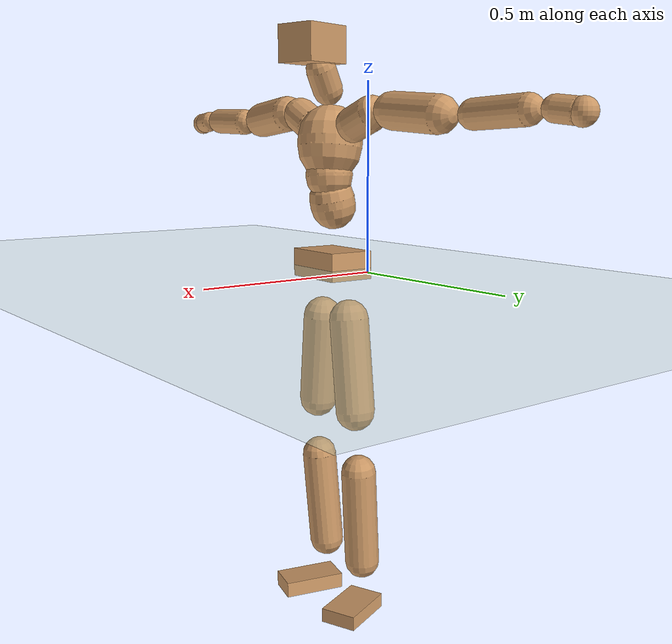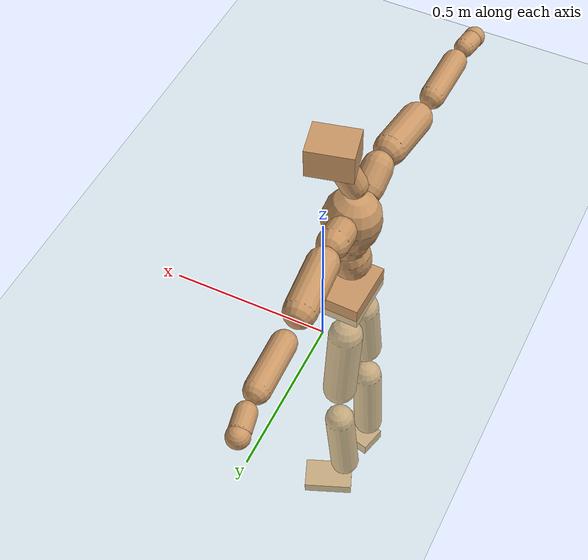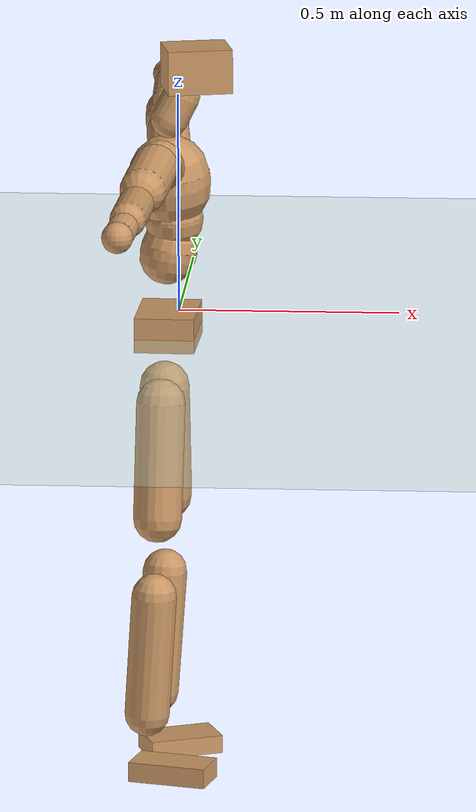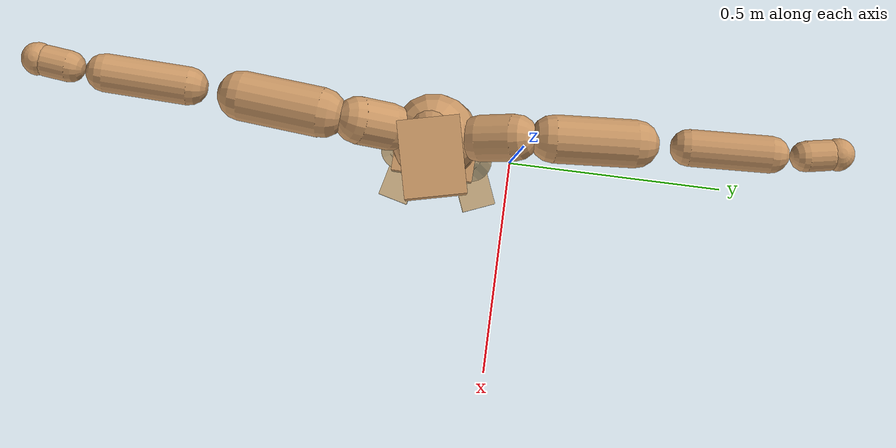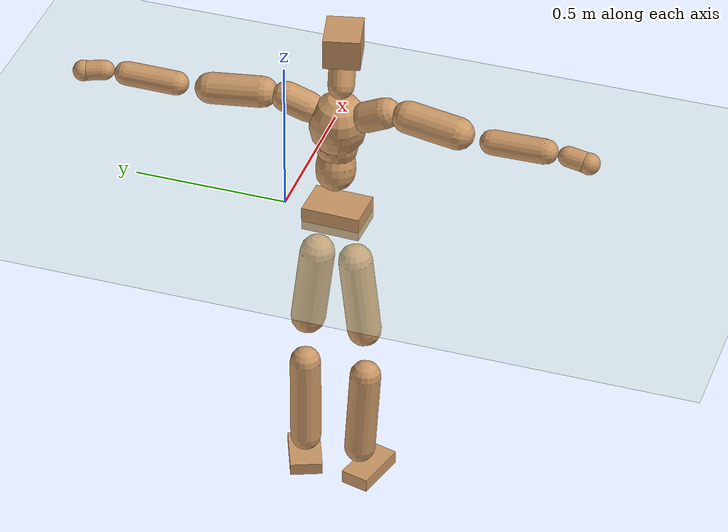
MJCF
<mujoco model="humanoid">
  <compiler coordinate="local" angle="radian"/>
  <default>
    <joint damping="0.0" armature="0.01" stiffness="0.0" limited="true"/>
    <geom conaffinity="1" condim="3" contype="7" margin="0.001" rgba="0.8 0.6 .4 1"/>
  </default>
  <asset>
    <texture type="skybox" builtin="gradient" rgb1=".4 .5 .6" rgb2="0 0 0" width="100" height="100"/>
    <texture builtin="flat" height="1278" mark="cross" markrgb="1 1 1" name="texgeom" random="0.01" rgb1="0.8 0.6 0.4" rgb2="0.8 0.6 0.4" type="cube" width="127"/>
    <texture builtin="checker" height="100" name="texplane" rgb1="0 0 0" rgb2="0.8 0.8 0.8" type="2d" width="100"/>
    <material name="MatPlane" reflectance="0.5" shininess="1" specular="1" texrepeat="60 60" texture="texplane"/>
    <material name="geom" texture="texgeom" texuniform="true"/>
  </asset>
  <worldbody>
    <light cutoff="100" diffuse="1 1 1" dir="-0 0 -1.3" directional="true" exponent="1" pos="0 0 1.3" specular=".1 .1 .1"/>
    <geom conaffinity="1" condim="3" name="floor" pos="0 0 0" rgba="0.8 0.9 0.8 1" size="100 100 .2" type="plane" material="MatPlane"/>
    <body name="Pelvis" pos="-0.0004 -0.1772 0.0151">
      <freejoint name="Pelvis"/>
      <geom type="box" contype="1" conaffinity="1" density="500" pos="-0.0117 0.0004 -0.0084" size="0.0673 0.0951 0.0395" quat="0.9999 0.0000 0.0000 -0.0155" name="Pelvis"/>
      <body name="L_Hip" pos="-0.0256 0.0511 -0.0754">
        <joint name="L_Hip_x" type="hinge" pos="0 0 0" axis="1 0 0" stiffness="800" damping="80" armature="0.02" range="-180.0000 180.0000"/>
        <joint name="L_Hip_y" type="hinge" pos="0 0 0" axis="0 1 0" stiffness="800" damping="80" armature="0.02" range="-180.0000 180.0000"/>
        <joint name="L_Hip_z" type="hinge" pos="0 0 0" axis="0 0 1" stiffness="800" damping="80" armature="0.02" range="-180.0000 180.0000"/>
        <geom type="capsule" contype="1" conaffinity="1" density="500" fromto="0.0008 0.0109 -0.0882 0.0031 0.0436 -0.3529" size="0.0563" name="L_Hip"/>
        <body name="L_Knee" pos="0.0039 0.0545 -0.4411">
          <joint name="L_Knee_x" type="hinge" pos="0 0 0" axis="1 0 0" stiffness="800" damping="80" armature="0.02" range="-180.0000 180.0000"/>
          <joint name="L_Knee_y" type="hinge" pos="0 0 0" axis="0 1 0" stiffness="800" damping="80" armature="0.02" range="-180.0000 180.0000"/>
          <joint name="L_Knee_z" type="hinge" pos="0 0 0" axis="0 0 1" stiffness="800" damping="80" armature="0.02" range="-180.0000 180.0000"/>
          <geom type="capsule" contype="1" conaffinity="1" density="500" fromto="-0.0068 -0.0025 -0.0951 -0.0272 -0.0101 -0.3803" size="0.0505" name="L_Knee"/>
          <body name="L_Ankle" pos="-0.034 -0.0126 -0.4754">
            <joint name="L_Ankle_x" type="hinge" pos="0 0 0" axis="1 0 0" stiffness="800" damping="80" armature="0.02" range="-180.0000 180.0000"/>
            <joint name="L_Ankle_y" type="hinge" pos="0 0 0" axis="0 1 0" stiffness="800" damping="80" armature="0.02" range="-180.0000 180.0000"/>
            <joint name="L_Ankle_z" type="hinge" pos="0 0 0" axis="0 0 1" stiffness="800" damping="80" armature="0.02" range="-180.0000 180.0000"/>
            <geom type="box" contype="1" conaffinity="1" density="500" pos="0.0603 0.0243 -0.0317" size="0.0845 0.053 0.0206" quat="0.9818 0.0000 0.0000 0.1901" name="L_Ankle"/>
            <body name="L_Toe" pos="0.1207 0.0486 -0.0634">
              <joint name="L_Toe_x" type="hinge" pos="0 0 0" axis="1 0 0" stiffness="500" damping="50" armature="0.02" range="-180.0000 180.0000"/>
              <joint name="L_Toe_y" type="hinge" pos="0 0 0" axis="0 1 0" stiffness="500" damping="50" armature="0.02" range="-180.0000 180.0000"/>
              <joint name="L_Toe_z" type="hinge" pos="0 0 0" axis="0 0 1" stiffness="500" damping="50" armature="0.02" range="-180.0000 180.0000"/>
              <geom type="box" contype="1" conaffinity="1" density="500" pos="0.0000 0.0000 0.0331" size="0.001 0.0025 0.0011" quat="0.9810 0.0000 0.0000 0.1942" name="L_Toe"/>
            </body>
          </body>
        </body>
      </body>
      <body name="R_Hip" pos="-0.0224 -0.054 -0.0838">
        <joint name="R_Hip_x" type="hinge" pos="0 0 0" axis="1 0 0" stiffness="800" damping="80" armature="0.02" range="-180.0000 180.0000"/>
        <joint name="R_Hip_y" type="hinge" pos="0 0 0" axis="0 1 0" stiffness="800" damping="80" armature="0.02" range="-180.0000 180.0000"/>
        <joint name="R_Hip_z" type="hinge" pos="0 0 0" axis="0 0 1" stiffness="800" damping="80" armature="0.02" range="-180.0000 180.0000"/>
        <geom type="capsule" contype="1" conaffinity="1" density="500" fromto="-0.0019 -0.0108 -0.0867 -0.0077 -0.0432 -0.3469" size="0.0552" name="R_Hip"/>
        <body name="R_Knee" pos="-0.0097 -0.0541 -0.4337">
          <joint name="R_Knee_x" type="hinge" pos="0 0 0" axis="1 0 0" stiffness="800" damping="80" armature="0.02" range="-180.0000 180.0000"/>
          <joint name="R_Knee_y" type="hinge" pos="0 0 0" axis="0 1 0" stiffness="800" damping="80" armature="0.02" range="-180.0000 180.0000"/>
          <joint name="R_Knee_z" type="hinge" pos="0 0 0" axis="0 0 1" stiffness="800" damping="80" armature="0.02" range="-180.0000 180.0000"/>
          <geom type="capsule" contype="1" conaffinity="1" density="500" fromto="-0.0060 0.0038 -0.0938 -0.0242 0.0153 -0.3751" size="0.051" name="R_Knee"/>
          <body name="R_Ankle" pos="-0.0302 0.0191 -0.4688">
            <joint name="R_Ankle_x" type="hinge" pos="0 0 0" axis="1 0 0" stiffness="800" damping="80" armature="0.02" range="-180.0000 180.0000"/>
            <joint name="R_Ankle_y" type="hinge" pos="0 0 0" axis="0 1 0" stiffness="800" damping="80" armature="0.02" range="-180.0000 180.0000"/>
            <joint name="R_Ankle_z" type="hinge" pos="0 0 0" axis="0 0 1" stiffness="800" damping="80" armature="0.02" range="-180.0000 180.0000"/>
            <geom type="box" contype="1" conaffinity="1" density="500" pos="0.0642 -0.0166 -0.0349" size="0.0899 0.0474 0.0228" quat="0.9920 0.0000 0.0000 -0.1261" name="R_Ankle"/>
            <body name="R_Toe" pos="0.1284 -0.0332 -0.0699">
              <joint name="R_Toe_x" type="hinge" pos="0 0 0" axis="1 0 0" stiffness="500" damping="50" armature="0.02" range="-180.0000 180.0000"/>
              <joint name="R_Toe_y" type="hinge" pos="0 0 0" axis="0 1 0" stiffness="500" damping="50" armature="0.02" range="-180.0000 180.0000"/>
              <joint name="R_Toe_z" type="hinge" pos="0 0 0" axis="0 0 1" stiffness="500" damping="50" armature="0.02" range="-180.0000 180.0000"/>
              <geom type="box" contype="1" conaffinity="1" density="500" pos="0.0000 0.0000 0.0350" size="0.001 0.0023 0.0011" quat="0.9931 0.0000 0.0000 -0.1170" name="R_Toe"/>
            </body>
          </body>
        </body>
      </body>
      <body name="Torso" pos="-0.0224 0.0051 0.1086">
        <joint name="Torso_x" type="hinge" pos="0 0 0" axis="1 0 0" stiffness="1000" damping="100" armature="0.02" range="-180.0000 180.0000"/>
        <joint name="Torso_y" type="hinge" pos="0 0 0" axis="0 1 0" stiffness="1000" damping="100" armature="0.02" range="-180.0000 180.0000"/>
        <joint name="Torso_z" type="hinge" pos="0 0 0" axis="0 0 1" stiffness="1000" damping="100" armature="0.02" range="-180.0000 180.0000"/>
        <geom type="capsule" contype="1" conaffinity="1" density="500" fromto="0.0148 0.0008 0.0660 0.0099 0.0005 0.0440" size="0.0637" name="Torso"/>
        <body name="Spine" pos="0.0247 0.0014 0.11">
          <joint name="Spine_x" type="hinge" pos="0 0 0" axis="1 0 0" stiffness="1000" damping="100" armature="0.02" range="-180.0000 180.0000"/>
          <joint name="Spine_y" type="hinge" pos="0 0 0" axis="0 1 0" stiffness="1000" damping="100" armature="0.02" range="-180.0000 180.0000"/>
          <joint name="Spine_z" type="hinge" pos="0 0 0" axis="0 0 1" stiffness="1000" damping="100" armature="0.02" range="-180.0000 180.0000"/>
          <geom type="capsule" contype="1" conaffinity="1" density="500" fromto="-0.0007 -0.0015 0.0261 -0.0005 -0.0010 0.0174" size="0.066" name="Spine"/>
          <body name="Chest" pos="-0.0012 -0.0025 0.0435">
            <joint name="Chest_x" type="hinge" pos="0 0 0" axis="1 0 0" stiffness="1000" damping="100" armature="0.02" range="-180.0000 180.0000"/>
            <joint name="Chest_y" type="hinge" pos="0 0 0" axis="0 1 0" stiffness="1000" damping="100" armature="0.02" range="-180.0000 180.0000"/>
            <joint name="Chest_z" type="hinge" pos="0 0 0" axis="0 0 1" stiffness="1000" damping="100" armature="0.02" range="-180.0000 180.0000"/>
            <geom type="capsule" contype="1" conaffinity="1" density="500" fromto="-0.0089 -0.0054 0.0798 -0.0060 -0.0036 0.0532" size="0.0909" name="Chest"/>
            <body name="Neck" pos="-0.0171 -0.0159 0.1903">
              <joint name="Neck_x" type="hinge" pos="0 0 0" axis="1 0 0" stiffness="500" damping="50" armature="0.02" range="-180.0000 180.0000"/>
              <joint name="Neck_y" type="hinge" pos="0 0 0" axis="0 1 0" stiffness="500" damping="50" armature="0.02" range="-180.0000 180.0000"/>
              <joint name="Neck_z" type="hinge" pos="0 0 0" axis="0 0 1" stiffness="500" damping="50" armature="0.02" range="-180.0000 180.0000"/>
              <geom type="capsule" contype="1" conaffinity="1" density="500" fromto="0.0091 0.0018 0.0177 0.0364 0.0072 0.0709" size="0.0417" name="Neck"/>
              <body name="Head" pos="0.0455 0.009 0.0886">
                <joint name="Head_x" type="hinge" pos="0 0 0" axis="1 0 0" stiffness="500" damping="50" armature="0.02" range="-180.0000 180.0000"/>
                <joint name="Head_y" type="hinge" pos="0 0 0" axis="0 1 0" stiffness="500" damping="50" armature="0.02" range="-180.0000 180.0000"/>
                <joint name="Head_z" type="hinge" pos="0 0 0" axis="0 0 1" stiffness="500" damping="50" armature="0.02" range="-180.0000 180.0000"/>
                <geom type="box" contype="1" conaffinity="1" density="500" pos="0.0238 0.0055 0.0453" size="0.0724 0.0582 0.0497" quat="0.9935 0.0000 0.0000 0.1135" name="Head"/>
              </body>
            </body>
            <body name="L_Thorax" pos="-0.0124 0.0671 0.1039">
              <joint name="L_Thorax_x" type="hinge" pos="0 0 0" axis="1 0 0" stiffness="500" damping="50" armature="0.02" range="-180.0000 180.0000"/>
              <joint name="L_Thorax_y" type="hinge" pos="0 0 0" axis="0 1 0" stiffness="500" damping="50" armature="0.02" range="-180.0000 180.0000"/>
              <joint name="L_Thorax_z" type="hinge" pos="0 0 0" axis="0 0 1" stiffness="500" damping="50" armature="0.02" range="-180.0000 180.0000"/>
              <geom type="capsule" contype="1" conaffinity="1" density="500" fromto="-0.0027 0.0226 0.0094 -0.0106 0.0905 0.0374" size="0.0483" name="L_Thorax"/>
              <body name="L_Shoulder" pos="-0.0133 0.1131 0.0468">
                <joint name="L_Shoulder_x" type="hinge" pos="0 0 0" axis="1 0 0" stiffness="500" damping="50" armature="0.02" range="-720.0000 720.0000"/>
                <joint name="L_Shoulder_y" type="hinge" pos="0 0 0" axis="0 1 0" stiffness="500" damping="50" armature="0.02" range="-720.0000 720.0000"/>
                <joint name="L_Shoulder_z" type="hinge" pos="0 0 0" axis="0 0 1" stiffness="500" damping="50" armature="0.02" range="-720.0000 720.0000"/>
                <geom type="capsule" contype="1" conaffinity="1" density="500" fromto="-0.0039 0.0550 -0.0043 -0.0156 0.2200 -0.0174" size="0.0496" name="L_Shoulder"/>
                <body name="L_Elbow" pos="-0.0195 0.2751 -0.0217">
                  <joint name="L_Elbow_x" type="hinge" pos="0 0 0" axis="1 0 0" stiffness="500" damping="50" armature="0.02" range="-720.0000 720.0000"/>
                  <joint name="L_Elbow_y" type="hinge" pos="0 0 0" axis="0 1 0" stiffness="500" damping="50" armature="0.02" range="-720.0000 720.0000"/>
                  <joint name="L_Elbow_z" type="hinge" pos="0 0 0" axis="0 0 1" stiffness="500" damping="50" armature="0.02" range="-720.0000 720.0000"/>
                  <geom type="capsule" contype="1" conaffinity="1" density="500" fromto="-0.0021 0.0547 0.0021 -0.0084 0.2189 0.0084" size="0.0381" name="L_Elbow"/>
                  <body name="L_Wrist" pos="-0.0105 0.2737 0.0105">
                    <joint name="L_Wrist_x" type="hinge" pos="0 0 0" axis="1 0 0" stiffness="300" damping="30" armature="0.02" range="-180.0000 180.0000"/>
                    <joint name="L_Wrist_y" type="hinge" pos="0 0 0" axis="0 1 0" stiffness="300" damping="30" armature="0.02" range="-180.0000 180.0000"/>
                    <joint name="L_Wrist_z" type="hinge" pos="0 0 0" axis="0 0 1" stiffness="300" damping="30" armature="0.02" range="-180.0000 180.0000"/>
                    <geom type="capsule" contype="1" conaffinity="1" density="500" fromto="-0.0031 0.0166 -0.0020 -0.0124 0.0663 -0.0079" size="0.0317" name="L_Wrist"/>
                    <body name="L_Hand" pos="-0.0155 0.0829 -0.0099">
                      <joint name="L_Hand_x" type="hinge" pos="0 0 0" axis="1 0 0" stiffness="300" damping="30" armature="0.02" range="-180.0000 180.0000"/>
                      <joint name="L_Hand_y" type="hinge" pos="0 0 0" axis="0 1 0" stiffness="300" damping="30" armature="0.02" range="-180.0000 180.0000"/>
                      <joint name="L_Hand_z" type="hinge" pos="0 0 0" axis="0 0 1" stiffness="300" damping="30" armature="0.02" range="-180.0000 180.0000"/>
                      <geom type="sphere" contype="1" conaffinity="1" density="500" size="0.0337" pos="0.0000 0.0000 0.0000" name="L_Hand"/>
                    </body>
                  </body>
                </body>
              </body>
            </body>
            <body name="R_Thorax" pos="-0.0153 -0.0781 0.1048">
              <joint name="R_Thorax_x" type="hinge" pos="0 0 0" axis="1 0 0" stiffness="500" damping="50" armature="0.02" range="-180.0000 180.0000"/>
              <joint name="R_Thorax_y" type="hinge" pos="0 0 0" axis="0 1 0" stiffness="500" damping="50" armature="0.02" range="-180.0000 180.0000"/>
              <joint name="R_Thorax_z" type="hinge" pos="0 0 0" axis="0 0 1" stiffness="500" damping="50" armature="0.02" range="-180.0000 180.0000"/>
              <geom type="capsule" contype="1" conaffinity="1" density="500" fromto="-0.0007 -0.0206 0.0101 -0.0027 -0.0823 0.0403" size="0.0489" name="R_Thorax"/>
              <body name="R_Shoulder" pos="-0.0034 -0.1029 0.0503">
                <joint name="R_Shoulder_x" type="hinge" pos="0 0 0" axis="1 0 0" stiffness="500" damping="50" armature="0.02" range="-720.0000 720.0000"/>
                <joint name="R_Shoulder_y" type="hinge" pos="0 0 0" axis="0 1 0" stiffness="500" damping="50" armature="0.02" range="-720.0000 720.0000"/>
                <joint name="R_Shoulder_z" type="hinge" pos="0 0 0" axis="0 0 1" stiffness="500" damping="50" armature="0.02" range="-720.0000 720.0000"/>
                <geom type="capsule" contype="1" conaffinity="1" density="500" fromto="-0.0050 -0.0547 -0.0050 -0.0199 -0.2189 -0.0200" size="0.0514" name="R_Shoulder"/>
                <body name="R_Elbow" pos="-0.0249 -0.2737 -0.025">
                  <joint name="R_Elbow_x" type="hinge" pos="0 0 0" axis="1 0 0" stiffness="500" damping="50" armature="0.02" range="-720.0000 720.0000"/>
                  <joint name="R_Elbow_y" type="hinge" pos="0 0 0" axis="0 1 0" stiffness="500" damping="50" armature="0.02" range="-720.0000 720.0000"/>
                  <joint name="R_Elbow_z" type="hinge" pos="0 0 0" axis="0 0 1" stiffness="500" damping="50" armature="0.02" range="-720.0000 720.0000"/>
                  <geom type="capsule" contype="1" conaffinity="1" density="500" fromto="-0.0017 -0.0563 0.0019 -0.0067 -0.2254 0.0077" size="0.0394" name="R_Elbow"/>
                  <body name="R_Wrist" pos="-0.0084 -0.2817 0.0097">
                    <joint name="R_Wrist_x" type="hinge" pos="0 0 0" axis="1 0 0" stiffness="300" damping="30" armature="0.02" range="-180.0000 180.0000"/>
                    <joint name="R_Wrist_y" type="hinge" pos="0 0 0" axis="0 1 0" stiffness="300" damping="30" armature="0.02" range="-180.0000 180.0000"/>
                    <joint name="R_Wrist_z" type="hinge" pos="0 0 0" axis="0 0 1" stiffness="300" damping="30" armature="0.02" range="-180.0000 180.0000"/>
                    <geom type="capsule" contype="1" conaffinity="1" density="500" fromto="-0.0020 -0.0168 -0.0016 -0.0080 -0.0673 -0.0063" size="0.0323" name="R_Wrist"/>
                    <body name="R_Hand" pos="-0.01 -0.0841 -0.0079">
                      <joint name="R_Hand_x" type="hinge" pos="0 0 0" axis="1 0 0" stiffness="300" damping="30" armature="0.02" range="-180.0000 180.0000"/>
                      <joint name="R_Hand_y" type="hinge" pos="0 0 0" axis="0 1 0" stiffness="300" damping="30" armature="0.02" range="-180.0000 180.0000"/>
                      <joint name="R_Hand_z" type="hinge" pos="0 0 0" axis="0 0 1" stiffness="300" damping="30" armature="0.02" range="-180.0000 180.0000"/>
                      <geom type="sphere" contype="1" conaffinity="1" density="500" size="0.0340" pos="0.0000 0.0000 0.0000" name="R_Hand"/>
                    </body>
                  </body>
                </body>
              </body>
            </body>
          </body>
        </body>
      </body>
    </body>
  </worldbody>
  <actuator>
    <motor name="L_Hip_x" joint="L_Hip_x" gear="500"/>
    <motor name="L_Hip_y" joint="L_Hip_y" gear="500"/>
    <motor name="L_Hip_z" joint="L_Hip_z" gear="500"/>
    <motor name="L_Knee_x" joint="L_Knee_x" gear="500"/>
    <motor name="L_Knee_y" joint="L_Knee_y" gear="500"/>
    <motor name="L_Knee_z" joint="L_Knee_z" gear="500"/>
    <motor name="L_Ankle_x" joint="L_Ankle_x" gear="500"/>
    <motor name="L_Ankle_y" joint="L_Ankle_y" gear="500"/>
    <motor name="L_Ankle_z" joint="L_Ankle_z" gear="500"/>
    <motor name="L_Toe_x" joint="L_Toe_x" gear="500"/>
    <motor name="L_Toe_y" joint="L_Toe_y" gear="500"/>
    <motor name="L_Toe_z" joint="L_Toe_z" gear="500"/>
    <motor name="R_Hip_x" joint="R_Hip_x" gear="500"/>
    <motor name="R_Hip_y" joint="R_Hip_y" gear="500"/>
    <motor name="R_Hip_z" joint="R_Hip_z" gear="500"/>
    <motor name="R_Knee_x" joint="R_Knee_x" gear="500"/>
    <motor name="R_Knee_y" joint="R_Knee_y" gear="500"/>
    <motor name="R_Knee_z" joint="R_Knee_z" gear="500"/>
    <motor name="R_Ankle_x" joint="R_Ankle_x" gear="500"/>
    <motor name="R_Ankle_y" joint="R_Ankle_y" gear="500"/>
    <motor name="R_Ankle_z" joint="R_Ankle_z" gear="500"/>
    <motor name="R_Toe_x" joint="R_Toe_x" gear="500"/>
    <motor name="R_Toe_y" joint="R_Toe_y" gear="500"/>
    <motor name="R_Toe_z" joint="R_Toe_z" gear="500"/>
    <motor name="Torso_x" joint="Torso_x" gear="500"/>
    <motor name="Torso_y" joint="Torso_y" gear="500"/>
    <motor name="Torso_z" joint="Torso_z" gear="500"/>
    <motor name="Spine_x" joint="Spine_x" gear="500"/>
    <motor name="Spine_y" joint="Spine_y" gear="500"/>
    <motor name="Spine_z" joint="Spine_z" gear="500"/>
    <motor name="Chest_x" joint="Chest_x" gear="500"/>
    <motor name="Chest_y" joint="Chest_y" gear="500"/>
    <motor name="Chest_z" joint="Chest_z" gear="500"/>
    <motor name="Neck_x" joint="Neck_x" gear="500"/>
    <motor name="Neck_y" joint="Neck_y" gear="500"/>
    <motor name="Neck_z" joint="Neck_z" gear="500"/>
    <motor name="Head_x" joint="Head_x" gear="500"/>
    <motor name="Head_y" joint="Head_y" gear="500"/>
    <motor name="Head_z" joint="Head_z" gear="500"/>
    <motor name="L_Thorax_x" joint="L_Thorax_x" gear="500"/>
    <motor name="L_Thorax_y" joint="L_Thorax_y" gear="500"/>
    <motor name="L_Thorax_z" joint="L_Thorax_z" gear="500"/>
    <motor name="L_Shoulder_x" joint="L_Shoulder_x" gear="500"/>
    <motor name="L_Shoulder_y" joint="L_Shoulder_y" gear="500"/>
    <motor name="L_Shoulder_z" joint="L_Shoulder_z" gear="500"/>
    <motor name="L_Elbow_x" joint="L_Elbow_x" gear="500"/>
    <motor name="L_Elbow_y" joint="L_Elbow_y" gear="500"/>
    <motor name="L_Elbow_z" joint="L_Elbow_z" gear="500"/>
    <motor name="L_Wrist_x" joint="L_Wrist_x" gear="500"/>
    <motor name="L_Wrist_y" joint="L_Wrist_y" gear="500"/>
    <motor name="L_Wrist_z" joint="L_Wrist_z" gear="500"/>
    <motor name="L_Hand_x" joint="L_Hand_x" gear="500"/>
    <motor name="L_Hand_y" joint="L_Hand_y" gear="500"/>
    <motor name="L_Hand_z" joint="L_Hand_z" gear="500"/>
    <motor name="R_Thorax_x" joint="R_Thorax_x" gear="500"/>
    <motor name="R_Thorax_y" joint="R_Thorax_y" gear="500"/>
    <motor name="R_Thorax_z" joint="R_Thorax_z" gear="500"/>
    <motor name="R_Shoulder_x" joint="R_Shoulder_x" gear="500"/>
    <motor name="R_Shoulder_y" joint="R_Shoulder_y" gear="500"/>
    <motor name="R_Shoulder_z" joint="R_Shoulder_z" gear="500"/>
    <motor name="R_Elbow_x" joint="R_Elbow_x" gear="500"/>
    <motor name="R_Elbow_y" joint="R_Elbow_y" gear="500"/>
    <motor name="R_Elbow_z" joint="R_Elbow_z" gear="500"/>
    <motor name="R_Wrist_x" joint="R_Wrist_x" gear="500"/>
    <motor name="R_Wrist_y" joint="R_Wrist_y" gear="500"/>
    <motor name="R_Wrist_z" joint="R_Wrist_z" gear="500"/>
    <motor name="R_Hand_x" joint="R_Hand_x" gear="500"/>
    <motor name="R_Hand_y" joint="R_Hand_y" gear="500"/>
    <motor name="R_Hand_z" joint="R_Hand_z" gear="500"/>
  </actuator>
  <contact>
    <exclude body1="Torso" body2="Chest"/>
    <exclude body1="Head" body2="Chest"/>
    <exclude body1="R_Knee" body2="R_Toe"/>
    <exclude body1="R_Knee" body2="L_Ankle"/>
    <exclude body1="R_Knee" body2="L_Toe"/>
    <exclude body1="L_Knee" body2="L_Toe"/>
    <exclude body1="L_Knee" body2="R_Ankle"/>
    <exclude body1="L_Knee" body2="R_Toe"/>
    <exclude body1="L_Shoulder" body2="Chest"/>
    <exclude body1="R_Shoulder" body2="Chest"/>
  </contact>
  <sensor/>
  <size njmax="700" nconmax="700"/>
</mujoco>
